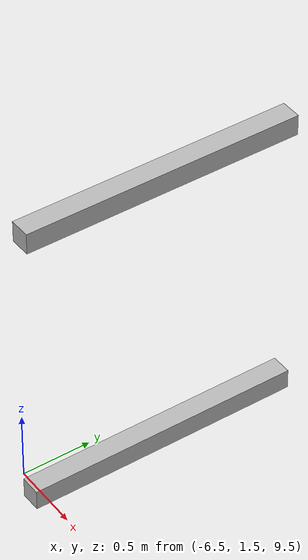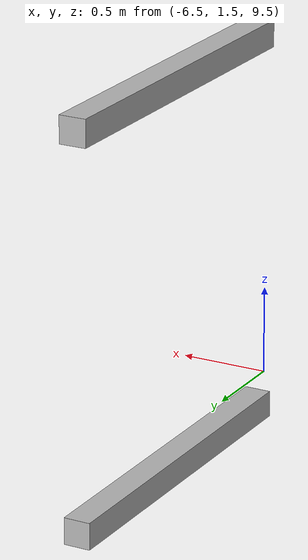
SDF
<sdf version="1.7">
 <world name="default">
  <model name="orthogonal_747_2.000.15_TS">
   <static>1</static>
   <link name="y_link_5_3_0">
    <inertial>
     <mass>1</mass>
     <inertia>
      <ixx>0.166667</ixx>
      <ixy>0</ixy>
      <ixz>0</ixz>
      <iyy>0.166667</iyy>
      <iyz>0</iyz>
      <izz>0.166667</izz>
     </inertia>
    </inertial>
    <pose>0 7.525 11.825 0 -0 0</pose>
    <visual name="visual_0">
     <laser_retro>4936</laser_retro>
     <geometry><box><size>0.15 1e-06 0.15</size></box></geometry>
     <material>
      <script><name>Gazebo/Grey</name><uri>file://media/materials/scripts/gazebo.material</uri></script>
      <shader type="pixel"><normal_map>__default__</normal_map></shader>
      <ambient>0.678 0.498 0.659 1</ambient>
      <diffuse>0.7 0.7 0.7 1</diffuse>
      <specular>0.01 0.01 0.01 1</specular>
      <emissive>0 0 0 1</emissive>
     </material>
     <pose>0 -1 0 0 -0 0</pose>
     <transparency>1</transparency>
    </visual>
    <visual name="visual_1">
     <laser_retro>4937</laser_retro>
     <geometry><box><size>0.15 1e-06 0.15</size></box></geometry>
     <material>
      <script><name>Gazebo/Grey</name><uri>file://media/materials/scripts/gazebo.material</uri></script>
      <shader type="pixel"><normal_map>__default__</normal_map></shader>
      <ambient>0.447 0.624 0.812 1</ambient>
      <diffuse>0.7 0.7 0.7 1</diffuse>
      <specular>0.01 0.01 0.01 1</specular>
      <emissive>0 0 0 1</emissive>
     </material>
     <pose>0 1 0 0 -0 0</pose>
     <transparency>1</transparency>
    </visual>
    <visual name="visual_2">
     <laser_retro>4938</laser_retro>
     <geometry><box><size>0.15 2 1e-06</size></box></geometry>
     <material>
      <script><name>Gazebo/Grey</name><uri>file://media/materials/scripts/gazebo.material</uri></script>
      <shader type="pixel"><normal_map>__default__</normal_map></shader>
      <ambient>0.988 0.686 0.243 1</ambient>
      <diffuse>0.7 0.7 0.7 1</diffuse>
      <specular>0.01 0.01 0.01 1</specular>
      <emissive>0 0 0 1</emissive>
     </material>
     <pose>0 0 -0.075 0 -0 0</pose>
     <transparency>1</transparency>
    </visual>
    <visual name="visual_3">
     <laser_retro>4939</laser_retro>
     <geometry><box><size>1e-06 2 0.15</size></box></geometry>
     <material>
      <script><name>Gazebo/Grey</name><uri>file://media/materials/scripts/gazebo.material</uri></script>
      <shader type="pixel"><normal_map>__default__</normal_map></shader>
      <ambient>0.988 0.914 0.31 1</ambient>
      <diffuse>0.7 0.7 0.7 1</diffuse>
      <specular>0.01 0.01 0.01 1</specular>
      <emissive>0 0 0 1</emissive>
     </material>
     <pose>0.075 0 0 0 -0 0</pose>
     <transparency>1</transparency>
    </visual>
    <visual name="visual_4">
     <laser_retro>4940</laser_retro>
     <geometry><box><size>0.15 2 1e-06</size></box></geometry>
     <material>
      <script><name>Gazebo/Grey</name><uri>file://media/materials/scripts/gazebo.material</uri></script>
      <shader type="pixel"><normal_map>__default__</normal_map></shader>
      <ambient>0.937 0.161 0.161 1</ambient>
      <diffuse>0.7 0.7 0.7 1</diffuse>
      <specular>0.01 0.01 0.01 1</specular>
      <emissive>0 0 0 1</emissive>
     </material>
     <pose>0 0 0.075 0 -0 0</pose>
     <transparency>1</transparency>
    </visual>
    <visual name="visual_5">
     <laser_retro>4941</laser_retro>
     <geometry><box><size>1e-06 2 0.15</size></box></geometry>
     <material>
      <script><name>Gazebo/Grey</name><uri>file://media/materials/scripts/gazebo.material</uri></script>
      <shader type="pixel"><normal_map>__default__</normal_map></shader>
      <ambient>0.541 0.886 0.204 1</ambient>
      <diffuse>0.7 0.7 0.7 1</diffuse>
      <specular>0.01 0.01 0.01 1</specular>
      <emissive>0 0 0 1</emissive>
     </material>
     <pose>-0.075 0 0 0 -0 0</pose>
     <transparency>1</transparency>
    </visual>
    <visual name="visual_texture">
     <geometry><box><size>0.149985 1.9998 0.149985</size></box></geometry>
     <material>
      <script>
       <uri>model://BASE_MODELS/simple_block_v2_textured/materials/scripts</uri>
       <uri>model://BASE_MODELS/simple_block_v2_textured/materials/textures</uri>
       <name>metal</name>
      </script>
     </material>
     <laser_retro>4942</laser_retro>
    </visual>
    <collision name="collision">
     <geometry><box><size>0.15 2 0.15</size></box></geometry>
     <surface>
      <friction>
       <ode><mu>1</mu><mu2>1</mu2><fdir1>0 0 0</fdir1><slip1>0</slip1><slip2>0</slip2></ode>
       <torsional>
        <coefficient>1</coefficient>
        <patch_radius>0</patch_radius>
        <surface_radius>0</surface_radius>
        <use_patch_radius>1</use_patch_radius>
        <ode><slip>0</slip></ode>
       </torsional>
      </friction>
      <bounce><restitution_coefficient>0</restitution_coefficient><threshold>1e+06</threshold></bounce>
      <contact>
       <collide_without_contact>0</collide_without_contact>
       <collide_without_contact_bitmask>1</collide_without_contact_bitmask>
       <collide_bitmask>1</collide_bitmask>
       <ode>
        <soft_cfm>0</soft_cfm>
        <soft_erp>0.2</soft_erp>
        <kp>1e+13</kp>
        <kd>1</kd>
        <max_vel>0.01</max_vel>
        <min_depth>0</min_depth>
       </ode>
       <bullet>
        <split_impulse>1</split_impulse>
        <split_impulse_penetration_threshold>-0.01</split_impulse_penetration_threshold>
        <soft_cfm>0</soft_cfm>
        <soft_erp>0.2</soft_erp>
        <kp>1e+13</kp>
        <kd>1</kd>
       </bullet>
      </contact>
     </surface>
    </collision>
   </link>
   <link name="y_link_6_3_0">
    <inertial>
     <mass>1</mass>
     <inertia>
      <ixx>0.166667</ixx>
      <ixy>0</ixy>
      <ixz>0</ixz>
      <iyy>0.166667</iyy>
      <iyz>0</iyz>
      <izz>0.166667</izz>
     </inertia>
    </inertial>
    <pose>0 7.525 13.975 0 -0 0</pose>
    <visual name="visual_0">
     <laser_retro>5923</laser_retro>
     <geometry><box><size>0.15 1e-06 0.15</size></box></geometry>
     <material>
      <script><name>Gazebo/Grey</name><uri>file://media/materials/scripts/gazebo.material</uri></script>
      <shader type="pixel"><normal_map>__default__</normal_map></shader>
      <ambient>0.678 0.498 0.659 1</ambient>
      <diffuse>0.7 0.7 0.7 1</diffuse>
      <specular>0.01 0.01 0.01 1</specular>
      <emissive>0 0 0 1</emissive>
     </material>
     <pose>0 -1 0 0 -0 0</pose>
     <transparency>1</transparency>
    </visual>
    <visual name="visual_1">
     <laser_retro>5924</laser_retro>
     <geometry><box><size>0.15 1e-06 0.15</size></box></geometry>
     <material>
      <script><name>Gazebo/Grey</name><uri>file://media/materials/scripts/gazebo.material</uri></script>
      <shader type="pixel"><normal_map>__default__</normal_map></shader>
      <ambient>0.447 0.624 0.812 1</ambient>
      <diffuse>0.7 0.7 0.7 1</diffuse>
      <specular>0.01 0.01 0.01 1</specular>
      <emissive>0 0 0 1</emissive>
     </material>
     <pose>0 1 0 0 -0 0</pose>
     <transparency>1</transparency>
    </visual>
    <visual name="visual_2">
     <laser_retro>5925</laser_retro>
     <geometry><box><size>0.15 2 1e-06</size></box></geometry>
     <material>
      <script><name>Gazebo/Grey</name><uri>file://media/materials/scripts/gazebo.material</uri></script>
      <shader type="pixel"><normal_map>__default__</normal_map></shader>
      <ambient>0.988 0.686 0.243 1</ambient>
      <diffuse>0.7 0.7 0.7 1</diffuse>
      <specular>0.01 0.01 0.01 1</specular>
      <emissive>0 0 0 1</emissive>
     </material>
     <pose>0 0 -0.075 0 -0 0</pose>
     <transparency>1</transparency>
    </visual>
    <visual name="visual_3">
     <laser_retro>5926</laser_retro>
     <geometry><box><size>1e-06 2 0.15</size></box></geometry>
     <material>
      <script><name>Gazebo/Grey</name><uri>file://media/materials/scripts/gazebo.material</uri></script>
      <shader type="pixel"><normal_map>__default__</normal_map></shader>
      <ambient>0.988 0.914 0.31 1</ambient>
      <diffuse>0.7 0.7 0.7 1</diffuse>
      <specular>0.01 0.01 0.01 1</specular>
      <emissive>0 0 0 1</emissive>
     </material>
     <pose>0.075 0 0 0 -0 0</pose>
     <transparency>1</transparency>
    </visual>
    <visual name="visual_4">
     <laser_retro>5927</laser_retro>
     <geometry><box><size>0.15 2 1e-06</size></box></geometry>
     <material>
      <script><name>Gazebo/Grey</name><uri>file://media/materials/scripts/gazebo.material</uri></script>
      <shader type="pixel"><normal_map>__default__</normal_map></shader>
      <ambient>0.937 0.161 0.161 1</ambient>
      <diffuse>0.7 0.7 0.7 1</diffuse>
      <specular>0.01 0.01 0.01 1</specular>
      <emissive>0 0 0 1</emissive>
     </material>
     <pose>0 0 0.075 0 -0 0</pose>
     <transparency>1</transparency>
    </visual>
    <visual name="visual_5">
     <laser_retro>5928</laser_retro>
     <geometry><box><size>1e-06 2 0.15</size></box></geometry>
     <material>
      <script><name>Gazebo/Grey</name><uri>file://media/materials/scripts/gazebo.material</uri></script>
      <shader type="pixel"><normal_map>__default__</normal_map></shader>
      <ambient>0.541 0.886 0.204 1</ambient>
      <diffuse>0.7 0.7 0.7 1</diffuse>
      <specular>0.01 0.01 0.01 1</specular>
      <emissive>0 0 0 1</emissive>
     </material>
     <pose>-0.075 0 0 0 -0 0</pose>
     <transparency>1</transparency>
    </visual>
    <visual name="visual_texture">
     <geometry><box><size>0.149985 1.9998 0.149985</size></box></geometry>
     <material>
      <script>
       <uri>model://BASE_MODELS/simple_block_v2_textured/materials/scripts</uri>
       <uri>model://BASE_MODELS/simple_block_v2_textured/materials/textures</uri>
       <name>metal</name>
      </script>
     </material>
     <laser_retro>5929</laser_retro>
    </visual>
    <collision name="collision">
     <geometry><box><size>0.15 2 0.15</size></box></geometry>
     <surface>
      <friction>
       <ode><mu>1</mu><mu2>1</mu2><fdir1>0 0 0</fdir1><slip1>0</slip1><slip2>0</slip2></ode>
       <torsional>
        <coefficient>1</coefficient>
        <patch_radius>0</patch_radius>
        <surface_radius>0</surface_radius>
        <use_patch_radius>1</use_patch_radius>
        <ode><slip>0</slip></ode>
       </torsional>
      </friction>
      <bounce><restitution_coefficient>0</restitution_coefficient><threshold>1e+06</threshold></bounce>
      <contact>
       <collide_without_contact>0</collide_without_contact>
       <collide_without_contact_bitmask>1</collide_without_contact_bitmask>
       <collide_bitmask>1</collide_bitmask>
       <ode>
        <soft_cfm>0</soft_cfm>
        <soft_erp>0.2</soft_erp>
        <kp>1e+13</kp>
        <kd>1</kd>
        <max_vel>0.01</max_vel>
        <min_depth>0</min_depth>
       </ode>
       <bullet>
        <split_impulse>1</split_impulse>
        <split_impulse_penetration_threshold>-0.01</split_impulse_penetration_threshold>
        <soft_cfm>0</soft_cfm>
        <soft_erp>0.2</soft_erp>
        <kp>1e+13</kp>
        <kd>1</kd>
       </bullet>
      </contact>
     </surface>
    </collision>
   </link>
   <pose>-6.47624 -5 -2.5 0 -0 0</pose>
  </model>
 </world>
</sdf>
